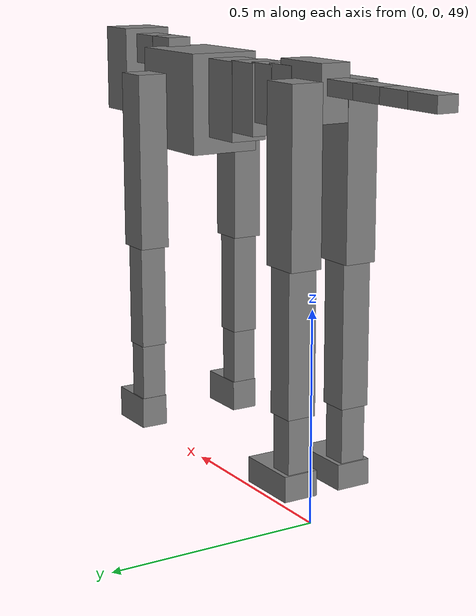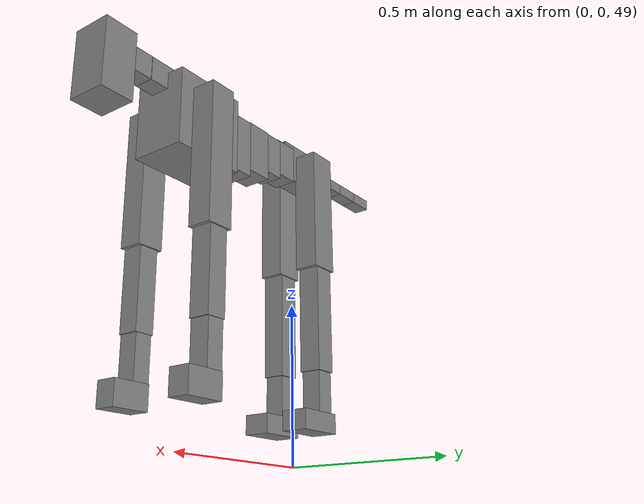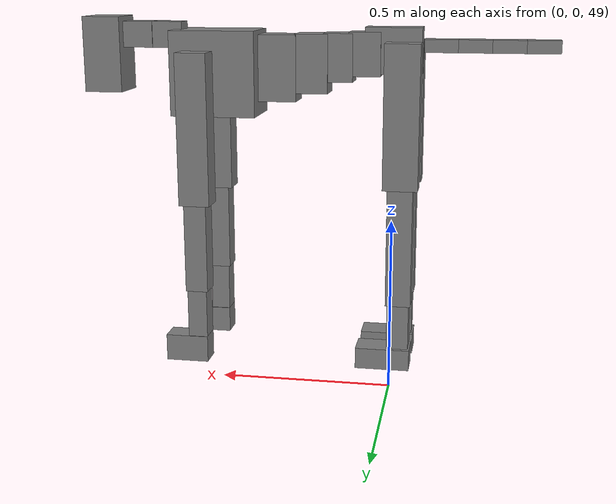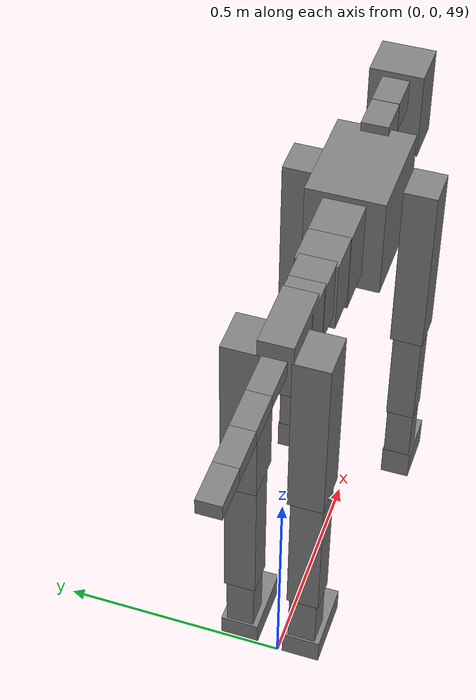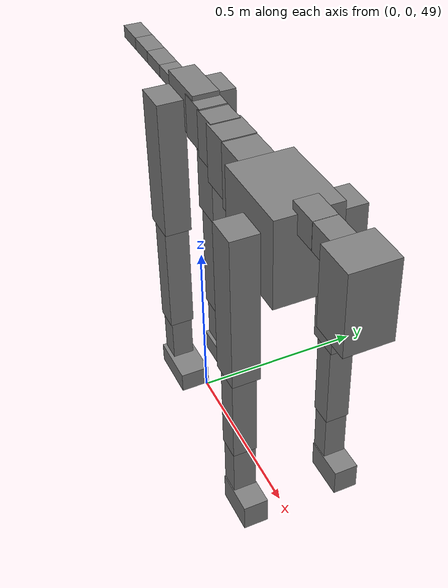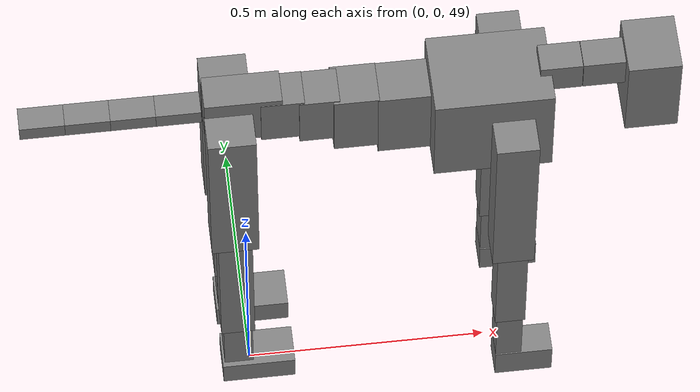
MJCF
<mujoco model="dog">

    <default>
        <joint armature="0.02" stiffness="1" damping="0.2" limited="true" />
        <geom condim="3" friction="1 0.05 0.05" margin="0.01" />
        <motor ctrllimited="true" ctrlrange="-1.0 1.0" forcelimited="true" gear="50" />
    </default>

    <compiler inertiafromgeom="true" angle="radian" />

    <option timestep="0.016" iterations="50" tolerance="1e-10" solver="Newton" jacobian="dense" cone="pyramidal" />

    <size nconmax="20000" njmax="60000" nstack="5000000" />
    <visual>
        <map force="0.1" zfar="30" />
        <rgba haze="0.15 0.25 0.35 1" />
        <quality shadowsize="2048" />
        <global offwidth="800" offheight="800" />
    </visual>

    <asset>
        <texture type="skybox" builtin="gradient" rgb1="0.3 0.5 0.7" rgb2="0 0 0" width="512" height="512" />
        <texture name="texplane" type="2d" builtin="checker" rgb1=".2 .3 .4" rgb2=".1 0.15 0.2" width="512" height="512" mark="cross" markrgb=".8 .8 .8" />
        <texture name="texgeom" type="cube" builtin="flat" mark="cross" width="127" height="1278" rgb1="0.8 0.6 0.4" rgb2="0.8 0.6 0.4" markrgb="1 1 1" random="0.01" />

        <material name="matplane" reflectance="0.3" texture="texplane" texrepeat="1 1" texuniform="true" />
        <material name="matgeom" texture="texgeom" texuniform="true" rgba="0.8 0.6 .4 1" />
    </asset>

    <worldbody>
        <geom name="floor" pos="0 0 0" size="0 0 .25" type="plane" material="matplane" condim="3" />

        <light directional="false" diffuse=".2 .2 .2" specular="0 0 0" pos="0 0 5" dir="0 0 -1" castshadow="false" />
        <light mode="targetbodycom" target="torso" directional="false" diffuse=".8 .8 .8" specular="0.3 0.3 0.3" pos="0 0 4.0" dir="0 0 -1" />

        <body name="root" pos="0 0 50">
            <freejoint name="root_1" />
            <geom type="box" pos="0 0 -0.02" size="0.0774  0.0358  0.063" density="2030" />

            <body name="spine1" pos="0.054 0 0">
                <joint name="spine1_y" axis="0 1 0" range="0 0.7" limited="true" />
                <geom type="box" pos="0.02375 0 -0.03" size="0.04375  0.0375  0.05985" density="2030" />

                <body name="spine2" pos="0.0612 0 0">
                    <joint name="spine2_y" axis="0 1 0" range="-0.15 0.15" limited="true" />
                    <geom type="box" pos="0.03555  0  -0.04" size="0.04055  0.039  0.06615" density="2030" />

                    <body name="spine3" pos="0.0730 0 0">
                        <joint name="spine3_y" axis="0 1 0" range="-0.15 0.15" limited="true" />
                        <geom type="box" pos="0.03555  0  -0.057" size="0.04555  0.0445  0.081" density="2030" />

                        <body name="spine4" pos="0.0780 0 0">
                            <joint name="spine4_y" axis="0 1 0" range="-0.15 0.15" limited="true" />
                            <geom type="box" pos="0.05265  0  -0.07" size="0.05265  0.045  0.09135" density="2030" />

                            <body name="torso" pos="0.1082 0 0">
                                <joint name="torso_y" axis="0 1 0" range="-0.15 0.15" limited="true" />
                                <geom type="box" pos="0.11925  0  -0.085" size="0.11925  0.085  0.11745" density="2030" />

                                <body name="neck1" pos="0.2160  0   0.0180">
                                    <joint name="neck1_y" axis="0 1 0" range="-1.2  -1" limited="true" />
                                    <geom type="box" pos="0.0423  0  0" size="0.0423  0.03  0.036" density="2325" />

                                    <body name="neck2" pos="0.0853  0  0">
                                        <joint name="neck2_y" axis="0 1 0" range="0.1  0" limited="true" />
                                        <geom type="box" pos="0.0423  0  0" size="0.0423  0.03  0.036" density="2325" />

                                        <body name="head" pos="0.0853  0  0">
                                            <joint name="head_y" axis="0 1 0" range="-0.3  -0.2" limited="true" />
                                            <geom type="box" pos="0.0531  0  -0.055" size="0.0531  0.06  0.1044" density="4030" />

                                        </body>
                                    </body>
                                </body>

                                <body name="front_shoulder" pos="0.156  0   -0.0480">
                                    <joint name="front_shoulder_y" axis="0 1 0" range="-1 1.5" limited="true" />
                                    <geom type="box" pos="0 0.13 -0.1822" size="0.0427  0.0365  0.2089" density="1158" />
                                    <geom type="box" pos="0 -0.13 -0.1822" size="0.0427  0.0365  0.2089" density="1158" />

                                    <body name="front_elbow" pos="0  0  -0.3645">
                                        <joint name="front_elbow_y" axis="0 1 0" range="-2 0" limited="true" />
                                        <geom type="box" pos="0 0.13 -0.1362" size="0.0311  0.0318  0.1362" density="1081" />
                                        <geom type="box" pos="0 -0.13 -0.1362" size="0.0311  0.0318  0.1362" density="1081" />

                                        <body name="front_wrist" pos="0  0  -0.2723">
                                            <joint name="front_wrist_y" axis="0 1 0" range="-0.2 0" limited="true" />
                                            <geom type="box" pos="0 0.13 -0.0742" size="0.0270  0.0300  0.0873" density="1664" />
                                            <geom type="box" pos="0 -0.13 -0.0742" size="0.0270  0.0300  0.0873" density="1664" />

                                            <body name="front_finger_end" pos="0  0  -0.1484">
                                                <joint name="front_finger_y" axis="0 1 0" range="-0.4 1" limited="true" />
                                                <geom type="box" pos="0.0326  0.13  -0.0223" size="0.0598  0.0326  0.0373" density="1515" />
                                                <geom type="box" pos="0.0326  -0.13  -0.0223" size="0.0598  0.0326  0.0373" density="1515" />

                                            </body>

                                        </body>
                                    </body>
                                </body>

                            </body>
                        </body>
                    </body>
                </body>
            </body>

            <body name="back_hip" pos="-0.03 0 -0.018">
                <joint name="back_hip_y" axis="0 1 0" range="-1.5 0.3" limited="true" />
                <geom type="box" pos="0 0.07 -0.1747" size="0.0482  0.0378  0.1975" density="1154" />
                <geom type="box" pos="0 -0.07 -0.1747" size="0.0482  0.0378  0.1975" density="1154" />

                <body name="back_knee" pos="0  0  -0.3494">
                    <joint name="back_knee_y" axis="0 1 0" range="0 2.8" limited="true" />
                    <geom type="box" pos="0 0.07 -0.1680" size="0.0349  0.0344  0.1835" density="1227" />
                    <geom type="box" pos="0 -0.07 -0.1680" size="0.0349  0.0344  0.1835" density="1227" />

                    <body name="back_ankle" pos="0  0  -0.3359">
                        <joint name="back_ankle_y" axis="0 1 0" range="-2.2 0" limited="true" />
                        <geom type="box" pos="0 0.07 -0.0788" size="0.0301  0.0301  0.0901" density="1284" />
                        <geom type="box" pos="0 -0.07 -0.0788" size="0.0301  0.0301  0.0901" density="1284" />

                        <body name="back_toe_end" pos="0  0  -0.1576">
                            <joint name="back_toe_y" axis="0 1 0" range="-0.4 1" limited="true" />
                            <geom type="box" pos="0.0412  0.07  -0.0146" size="0.0756  0.0412  0.0296" density="1515" />
                            <geom type="box" pos="0.0412  -0.07  -0.0146" size="0.0756  0.0412  0.0296" density="1515" />

                        </body>
                    </body>
                </body>
            </body>

            <body name="tail1" pos="-0.074 0 -0.006">
                <joint name="tail1_y" axis="0 1 0" range="-0.2 0.2" limited="true" />
                <geom type="box" pos="-0.0536  0  0" size="0.045  0.025  0.0175" density="1587" />

                <body name="tail2" pos="-0.09 0 0">
                    <joint name="tail2_y" axis="0 1 0" range="-0.2 0.2" limited="true" />
                    <geom type="box" pos="-0.0536  0  0" size="0.045  0.025  0.0175" density="1587" />

                    <body name="tail3" pos="-0.09 0 0">
                        <joint name="tail3_y" axis="0 1 0" range="-0.2 0.2" limited="true" />
                        <geom type="box" pos="-0.0536  0  0" size="0.045  0.025  0.0175" density="1587" />

                        <body name="tail4" pos="-0.09 0 0">
                            <joint name="tail4_y" axis="0 1 0" range="-0.2 0.2" limited="true" />
                            <geom type="box" pos="-0.0536  0  0" size="0.045  0.025  0.0175" density="1587" />

                        </body>
                    </body>
                </body>
            </body>
        </body>
    </worldbody>

    <actuator>
        <motor joint="spine1_y" forcerange="-150 150     " />
        <motor joint="spine2_y" forcerange="-150 150     " />
        <motor joint="spine3_y" forcerange="-150 150     " />
        <motor joint="spine4_y" forcerange="-150 150     " />
        <motor joint="torso_y" forcerange="-150 150     " />
        <motor joint="neck1_y" forcerange="-100 100       " />
        <motor joint="neck2_y" forcerange="-100 100       " />
        <motor joint="head_y" forcerange="-150 150       " />
        <motor joint="front_shoulder_y" forcerange="-160.99 182.28" />
        <motor joint="front_elbow_y" forcerange="-163.71 167.24" />
        <motor joint="front_wrist_y" forcerange="-135.09 105.06" />
        <motor joint="front_finger_y" forcerange="-61.21 72.74" />
        <motor joint="back_hip_y" forcerange="-387.33 316.81" />
        <motor joint="back_knee_y" forcerange="-344.45 355.61" />
        <motor joint="back_angle_y" forcerange="-200.24 181.80" />
        <motor joint="back_toe_y" forcerange="-112.40 137.48" />
        <motor joint="tail1_y" forcerange="-50 50     " />
        <motor joint="tail2_y" forcerange="-50 50     " />
        <motor joint="tail3_y" forcerange="-50 50     " />
        <motor joint="tail4_y" forcerange="-50 50     " />
    </actuator>
</mujoco>
